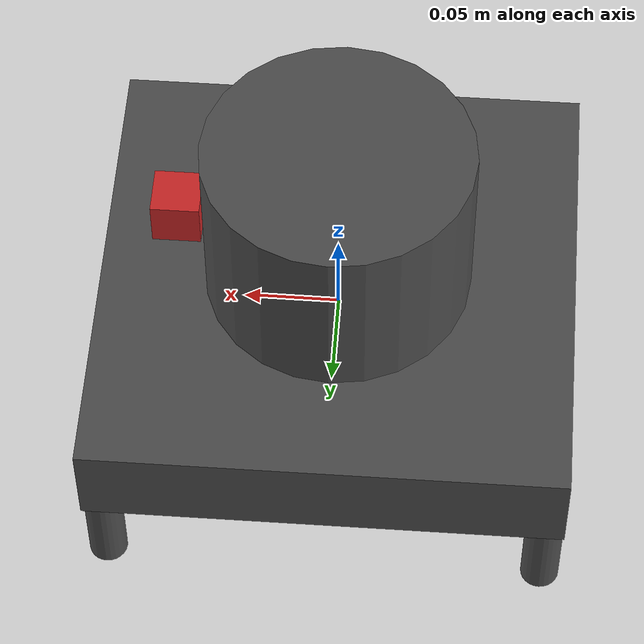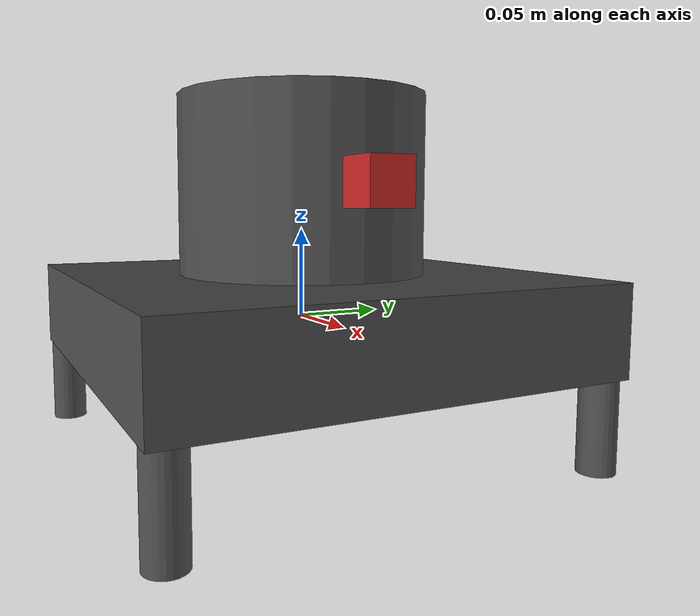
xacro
<?xml version='1.0'?>
<robot xmlns:xacro="http://www.ros.org/wiki/xacro" name="chaser">
    <xacro:include filename="dimensions.xacro"/>
    <xacro:include filename="macros.xacro"/>

    <!-- Dummy root link -->

    <!-- Body -->
    <link name="body">
        <collision name="body_col">
            <geometry><box size="${body_x} ${body_y} ${body_z + leg_len}"/>
            </geometry>
        </collision>

        <collision name="head_col">
            <origin xyz="0 0 ${body_z/2 + head_len/2}"/>
            <geometry>
                <cylinder radius="${head_r}" length="${head_len}"/>
            </geometry>
        </collision>

        <visual name="body_vis">
            <geometry>
                <box size="${body_dim}"/>
            </geometry>
        </visual>

        <visual name="leg_1">
            <origin xyz="${body_x/2 - leg_r} ${body_y/2 - leg_r} ${-body_z}"/>
            <geometry>
                <cylinder radius="${leg_r}" length="${leg_len}"/>
            </geometry>
        </visual>

        <visual name="leg_2">
            <origin xyz="${-body_x/2 + leg_r} ${body_y/2 - leg_r} ${-body_z}"/>
            <geometry>
                <cylinder radius="${leg_r}" length="${leg_len}"/>
            </geometry>
        </visual>

        <visual name="leg_3">
            <origin xyz="${body_x/2 - leg_r} ${-body_y/2 + leg_r} ${-body_z}"/>
            <geometry>
                <cylinder radius="${leg_r}" length="${leg_len}"/>
            </geometry>
        </visual>

        <visual name="leg_4">
            <origin xyz="${-body_x/2 + leg_r} ${-body_y/2 + leg_r} ${-body_z}"/>
            <geometry>
                <cylinder radius="${leg_r}" length="${leg_len}"/>
            </geometry>
        </visual>

        <visual name="head_vis">
            <origin xyz="0 0 ${body_z/2 + head_len/2}"/>
            <geometry>
                <cylinder radius="${head_r}" length="${head_len}"/>
            </geometry>
        </visual>

        <xacro:inertial_box mass="30.0" x="${body_x}" y="${body_y}" z="${body_z}">
            <origin xyz="0 0 0" rpy="0 0 0"/>
        </xacro:inertial_box>
    </link>

    <!-- Camera L -->
    <link name="camera">
        <visual>
            <origin xyz="${cam_size/2} 0 0"/>
            <geometry>
                <box size="${cam_size} ${cam_size} ${cam_size}"/>
            </geometry>
        </visual>
    </link>

    <joint name="camera_fix" type="fixed">
        <origin xyz = "${head_r} 0 ${(head_len + body_z) / 2}"/>
        <parent link = "body"/>
        <child link = "camera"/>
    </joint>

    <link name="camera_optical"></link>

    <joint name="camera_optical_joint" type="fixed">
        <!-- these values have to be these values otherwise the gazebo camera
            image won't be aligned properly with the frame it is supposedly
            originating from -->
        <origin xyz="0 0 0" rpy="${-pi/2} 0 ${-pi/2}"/>
        <parent link="camera"/>
        <child link="camera_optical"/>
    </joint>

    <xacro:include filename="gazebo.xacro"/>
</robot>

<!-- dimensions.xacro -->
<robot xmlns:xacro="http://www.ros.org/wiki/xacro">

    <!-- Body -->
    <xacro:property name="body_x" value="0.25"/>
    <xacro:property name="body_y" value="${body_x}"/>
    <xacro:property name="body_z" value="0.05"/>
    <xacro:property name="body_dim" value="${body_x} ${body_y} ${body_z}"/>

    <!-- Legs -->
    <xacro:property name="leg_r" value="0.01"/>
    <xacro:property name="leg_len" value="0.05"/>

    <!-- Body Collision -->
    <xacro:property name="body_col_dim" value="${body_x} ${body_y} ${body_z + leg_len}"/>

    <!-- Head -->
    <xacro:property name="head_r" value="0.07"/>
    <xacro:property name="head_len" value="0.1"/>

    <!-- Cameras -->
    <xacro:property name="cam_size" value="0.025"/>

</robot>

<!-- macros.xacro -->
<robot xmlns:xacro="http://www.ros.org/wiki/xacro">

    <!-- Inertial -->
    <xacro:macro name="inertial_sphere" params="mass radius *origin">
        <inertial>
            <xacro:insert_block name="origin"/>
            <mass value="${mass}" />
            <inertia ixx="${(2/5) * mass * (radius*radius)}" ixy="0.0" ixz="0.0"
                    iyy="${(2/5) * mass * (radius*radius)}" iyz="0.0"
                    izz="${(2/5) * mass * (radius*radius)}" />
        </inertial>
    </xacro:macro>

    <xacro:macro name="inertial_box" params="mass x y z *origin">
        <inertial>
            <xacro:insert_block name="origin"/>
            <mass value="${mass}" />
            <inertia ixx="${(1/12) * mass * (y*y+z*z)}" ixy="0.0" ixz="0.0"
                    iyy="${(1/12) * mass * (x*x+z*z)}" iyz="0.0"
                    izz="${(1/12) * mass * (x*x+y*y)}" />
        </inertial>
    </xacro:macro>

    <xacro:macro name="inertial_cylinder" params="mass length radius *origin">
        <inertial>
            <xacro:insert_block name="origin"/>
            <mass value="${mass}" />
            <inertia ixx="${(1/12) * mass * (3*radius*radius + length*length)}" ixy="0.0" ixz="0.0"
                    iyy="${(1/12) * mass * (3*radius*radius + length*length)}" iyz="0.0"
                    izz="${(1/2) * mass * (radius*radius)}" />
        </inertial>
    </xacro:macro>

</robot>
